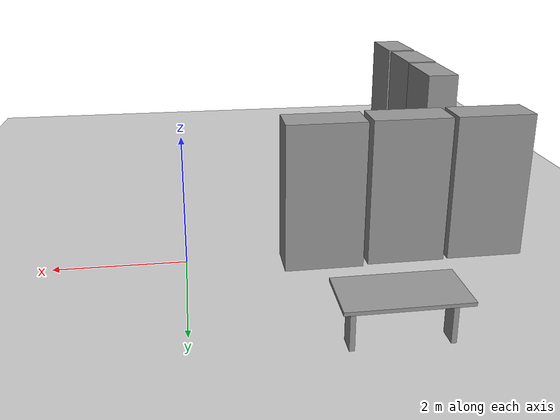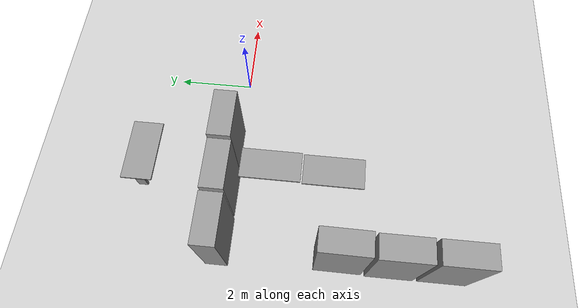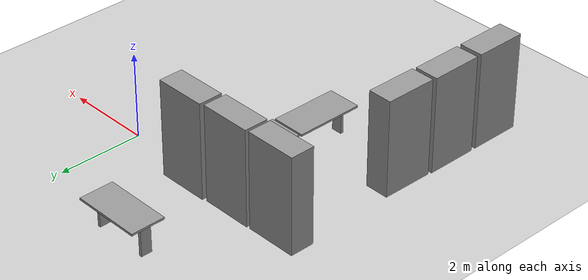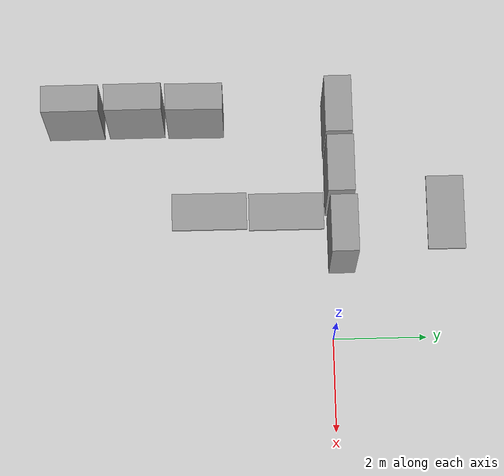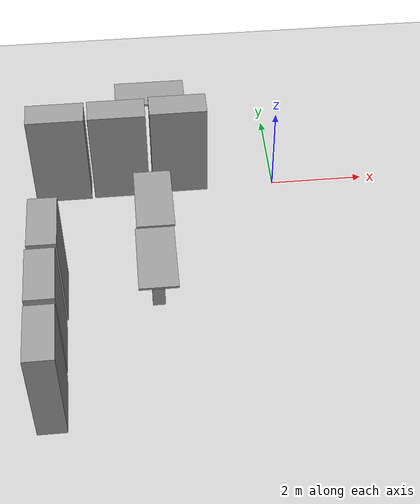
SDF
<sdf version="1.6">
 <world name="default">
  <model name="ground_plane">
   <static>1</static>
   <link name="link">
    <collision name="collision">
     <geometry><plane><normal>0 0 1</normal><size>100 100</size></plane></geometry>
     <surface><friction><ode><mu>100</mu><mu2>50</mu2></ode></friction></surface>
    </collision>
    <visual name="visual">
     <cast_shadows>0</cast_shadows>
     <geometry><plane><normal>0 0 1</normal><size>100 100</size></plane></geometry>
     <material>
      <script><uri>file://media/materials/scripts/gazebo.material</uri><name>Gazebo/Grey</name></script>
     </material>
    </visual>
   </link>
  </model>
  <model name="table2_1_2">
   <link name="link_0">
    <pose>0.065308 0.022644 0.260892 0 -0 0</pose>
    <inertial>
     <mass>0.0176486</mass>
     <inertia>
      <ixx>0.00156504</ixx>
      <ixy>0</ixy>
      <ixz>0</ixz>
      <iyy>0.00147786</iyy>
      <iyz>0</iyz>
      <izz>0.00010146</izz>
     </inertia>
    </inertial>
    <visual name="visual">
     <geometry><box><size>0.0697 0.253231 0.7</size></box></geometry>
     <material>
      <lighting>1</lighting>
      <script><uri>file://media/materials/scripts/gazebo.material</uri><name>Gazebo/Grey</name></script>
      <ambient>0.3 0.3 0.3 1</ambient>
      <diffuse>0.7 0.7 0.7 1</diffuse>
      <specular>0.01 0.01 0.01 1</specular>
      <emissive>0 0 0 1</emissive>
      <shader type="vertex"><normal_map>__default__</normal_map></shader>
     </material>
    </visual>
    <collision name="collision">
     <geometry><box><size>0.0697 0.253231 0.7</size></box></geometry>
     <surface>
      <friction>
       <ode><mu>1</mu><mu2>1</mu2><fdir1>0 0 0</fdir1><slip1>0</slip1><slip2>0</slip2></ode>
       <torsional>
        <coefficient>1</coefficient>
        <patch_radius>0</patch_radius>
        <surface_radius>0</surface_radius>
        <use_patch_radius>1</use_patch_radius>
        <ode><slip>0</slip></ode>
       </torsional>
      </friction>
      <bounce><restitution_coefficient>0</restitution_coefficient><threshold>1e+06</threshold></bounce>
      <contact>
       <collide_without_contact>0</collide_without_contact>
       <collide_without_contact_bitmask>1</collide_without_contact_bitmask>
       <collide_bitmask>1</collide_bitmask>
       <ode>
        <soft_cfm>0</soft_cfm>
        <soft_erp>0.2</soft_erp>
        <kp>1e+13</kp>
        <kd>1</kd>
        <max_vel>0.01</max_vel>
        <min_depth>0</min_depth>
       </ode>
       <bullet>
        <split_impulse>1</split_impulse>
        <split_impulse_penetration_threshold>-0.01</split_impulse_penetration_threshold>
        <soft_cfm>0</soft_cfm>
        <soft_erp>0.2</soft_erp>
        <kp>1e+13</kp>
        <kd>1</kd>
       </bullet>
      </contact>
     </surface>
    </collision>
   </link>
   <link name="link_0_clone">
    <pose>1.3547 0.013267 0.260893 0 -0 0</pose>
    <inertial>
     <mass>0.0176486</mass>
     <inertia>
      <ixx>0.00156504</ixx>
      <ixy>0</ixy>
      <ixz>0</ixz>
      <iyy>0.00147786</iyy>
      <iyz>0</iyz>
      <izz>0.00010146</izz>
     </inertia>
    </inertial>
    <visual name="visual">
     <geometry><box><size>0.0697 0.253231 0.7</size></box></geometry>
     <material>
      <lighting>1</lighting>
      <script><uri>file://media/materials/scripts/gazebo.material</uri><name>Gazebo/Grey</name></script>
      <ambient>0.3 0.3 0.3 1</ambient>
      <diffuse>0.7 0.7 0.7 1</diffuse>
      <specular>0.01 0.01 0.01 1</specular>
      <emissive>0 0 0 1</emissive>
      <shader type="vertex"><normal_map>__default__</normal_map></shader>
     </material>
    </visual>
    <collision name="collision">
     <geometry><box><size>0.0697 0.253231 0.7</size></box></geometry>
     <surface>
      <friction>
       <ode><mu>1</mu><mu2>1</mu2><fdir1>0 0 0</fdir1><slip1>0</slip1><slip2>0</slip2></ode>
       <torsional>
        <coefficient>1</coefficient>
        <patch_radius>0</patch_radius>
        <surface_radius>0</surface_radius>
        <use_patch_radius>1</use_patch_radius>
        <ode><slip>0</slip></ode>
       </torsional>
      </friction>
      <bounce><restitution_coefficient>0</restitution_coefficient><threshold>1e+06</threshold></bounce>
      <contact>
       <collide_without_contact>0</collide_without_contact>
       <collide_without_contact_bitmask>1</collide_without_contact_bitmask>
       <collide_bitmask>1</collide_bitmask>
       <ode>
        <soft_cfm>0</soft_cfm>
        <soft_erp>0.2</soft_erp>
        <kp>1e+13</kp>
        <kd>1</kd>
        <max_vel>0.01</max_vel>
        <min_depth>0</min_depth>
       </ode>
       <bullet>
        <split_impulse>1</split_impulse>
        <split_impulse_penetration_threshold>-0.01</split_impulse_penetration_threshold>
        <soft_cfm>0</soft_cfm>
        <soft_erp>0.2</soft_erp>
        <kp>1e+13</kp>
        <kd>1</kd>
       </bullet>
      </contact>
     </surface>
    </collision>
   </link>
   <link name="link_1">
    <pose>0.742636 0.022644 0.617468 0 -0 0</pose>
    <inertial>
     <mass>0.0666298</mass>
     <inertia>
      <ixx>0.00555983</ixx>
      <ixy>0</ixy>
      <ixz>0</ixz>
      <iyy>0.0186674</iyy>
      <iyz>0</iyz>
      <izz>0.0242125</izz>
     </inertia>
    </inertial>
    <visual name="visual">
     <geometry><box><size>1.6 0.8 0.050001</size></box></geometry>
     <material>
      <lighting>1</lighting>
      <script><uri>file://media/materials/scripts/gazebo.material</uri><name>Gazebo/Grey</name></script>
      <ambient>0.3 0.3 0.3 1</ambient>
      <diffuse>0.7 0.7 0.7 1</diffuse>
      <specular>0.01 0.01 0.01 1</specular>
      <emissive>0 0 0 1</emissive>
      <shader type="vertex"><normal_map>__default__</normal_map></shader>
     </material>
    </visual>
    <collision name="collision">
     <geometry><box><size>1.6 0.8 0.050001</size></box></geometry>
     <surface>
      <friction>
       <ode><mu>1000</mu><mu2>1000</mu2><fdir1>0 0 0</fdir1><slip1>0</slip1><slip2>0</slip2></ode>
       <torsional>
        <coefficient>1</coefficient>
        <patch_radius>0</patch_radius>
        <surface_radius>0</surface_radius>
        <use_patch_radius>1</use_patch_radius>
        <ode><slip>0</slip></ode>
       </torsional>
      </friction>
      <bounce><restitution_coefficient>0</restitution_coefficient><threshold>1e+06</threshold></bounce>
      <contact>
       <collide_without_contact>0</collide_without_contact>
       <collide_without_contact_bitmask>1</collide_without_contact_bitmask>
       <collide_bitmask>1</collide_bitmask>
       <ode>
        <soft_cfm>0</soft_cfm>
        <soft_erp>0.2</soft_erp>
        <kp>1e+13</kp>
        <kd>1</kd>
        <max_vel>0.01</max_vel>
        <min_depth>0</min_depth>
       </ode>
       <bullet>
        <split_impulse>1</split_impulse>
        <split_impulse_penetration_threshold>-0.01</split_impulse_penetration_threshold>
        <soft_cfm>0</soft_cfm>
        <soft_erp>0.2</soft_erp>
        <kp>1e+13</kp>
        <kd>1</kd>
       </bullet>
      </contact>
     </surface>
    </collision>
   </link>
   <joint name="link_0_JOINT_0" type="fixed">
    <parent>link_0</parent>
    <child>link_0_clone</child>
    <physics>
     <ode><limit><cfm>0</cfm><erp>0.2</erp></limit><suspension><cfm>0</cfm><erp>0.2</erp></suspension></ode>
    </physics>
   </joint>
   <joint name="link_1_JOINT_1" type="fixed">
    <parent>link_1</parent>
    <child>link_0</child>
    <physics>
     <ode><limit><cfm>0</cfm><erp>0.2</erp></limit><suspension><cfm>0</cfm><erp>0.2</erp></suspension></ode>
    </physics>
   </joint>
   <static>1</static>
   <pose>-3.32099 2.43146 0.099338 0 -0 0</pose>
  </model>
  <model name="Closet">
   <link name="link_0">
    <inertial>
     <mass>1.28913</mass>
     <inertia>
      <ixx>0.592801</ixx>
      <ixy>0</ixy>
      <ixz>0</ixz>
      <iyy>0.665886</iyy>
      <iyz>0</iyz>
      <izz>0.14177</izz>
     </inertia>
    </inertial>
    <visual name="visual">
     <geometry><box><size>1.2 0.565387 2.28001</size></box></geometry>
     <material>
      <lighting>1</lighting>
      <script><uri>file://media/materials/scripts/gazebo.material</uri><name>Gazebo/Grey</name></script>
      <ambient>0.3 0.3 0.3 1</ambient>
      <diffuse>0.7 0.7 0.7 1</diffuse>
      <specular>0.01 0.01 0.01 1</specular>
      <emissive>0 0 0 1</emissive>
      <shader type="vertex"><normal_map>__default__</normal_map></shader>
     </material>
    </visual>
    <collision name="collision">
     <geometry><box><size>1.2 0.565387 2.28001</size></box></geometry>
     <surface>
      <friction>
       <ode><mu>1</mu><mu2>1</mu2><fdir1>0 0 0</fdir1><slip1>0</slip1><slip2>0</slip2></ode>
       <torsional>
        <coefficient>1</coefficient>
        <patch_radius>0</patch_radius>
        <surface_radius>0</surface_radius>
        <use_patch_radius>1</use_patch_radius>
        <ode><slip>0</slip></ode>
       </torsional>
      </friction>
      <bounce><restitution_coefficient>0</restitution_coefficient><threshold>1e+06</threshold></bounce>
      <contact>
       <collide_without_contact>0</collide_without_contact>
       <collide_without_contact_bitmask>1</collide_without_contact_bitmask>
       <collide_bitmask>1</collide_bitmask>
       <ode>
        <soft_cfm>0</soft_cfm>
        <soft_erp>0.2</soft_erp>
        <kp>1e+13</kp>
        <kd>1</kd>
        <max_vel>0.01</max_vel>
        <min_depth>0</min_depth>
       </ode>
       <bullet>
        <split_impulse>1</split_impulse>
        <split_impulse_penetration_threshold>-0.01</split_impulse_penetration_threshold>
        <soft_cfm>0</soft_cfm>
        <soft_erp>0.2</soft_erp>
        <kp>1e+13</kp>
        <kd>1</kd>
       </bullet>
      </contact>
     </surface>
    </collision>
   </link>
   <static>0</static>
   <pose>-4.60391 0.162888 1.14001 0 1e-06 0.001911</pose>
  </model>
  <model name="Closet_clone">
   <link name="link_0">
    <inertial>
     <mass>1.28913</mass>
     <inertia>
      <ixx>0.592801</ixx>
      <ixy>0</ixy>
      <ixz>0</ixz>
      <iyy>0.665886</iyy>
      <iyz>0</iyz>
      <izz>0.14177</izz>
     </inertia>
    </inertial>
    <visual name="visual">
     <geometry><box><size>1.2 0.565387 2.28001</size></box></geometry>
     <material>
      <lighting>1</lighting>
      <script><uri>file://media/materials/scripts/gazebo.material</uri><name>Gazebo/Grey</name></script>
      <ambient>0.3 0.3 0.3 1</ambient>
      <diffuse>0.7 0.7 0.7 1</diffuse>
      <specular>0.01 0.01 0.01 1</specular>
      <emissive>0 0 0 1</emissive>
      <shader type="vertex"><normal_map>__default__</normal_map></shader>
     </material>
    </visual>
    <collision name="collision">
     <geometry><box><size>1.2 0.565387 2.28001</size></box></geometry>
     <surface>
      <friction>
       <ode><mu>1</mu><mu2>1</mu2><fdir1>0 0 0</fdir1><slip1>0</slip1><slip2>0</slip2></ode>
       <torsional>
        <coefficient>1</coefficient>
        <patch_radius>0</patch_radius>
        <surface_radius>0</surface_radius>
        <use_patch_radius>1</use_patch_radius>
        <ode><slip>0</slip></ode>
       </torsional>
      </friction>
      <bounce><restitution_coefficient>0</restitution_coefficient><threshold>1e+06</threshold></bounce>
      <contact>
       <collide_without_contact>0</collide_without_contact>
       <collide_without_contact_bitmask>1</collide_without_contact_bitmask>
       <collide_bitmask>1</collide_bitmask>
       <ode>
        <soft_cfm>0</soft_cfm>
        <soft_erp>0.2</soft_erp>
        <kp>1e+13</kp>
        <kd>1</kd>
        <max_vel>0.01</max_vel>
        <min_depth>0</min_depth>
       </ode>
       <bullet>
        <split_impulse>1</split_impulse>
        <split_impulse_penetration_threshold>-0.01</split_impulse_penetration_threshold>
        <soft_cfm>0</soft_cfm>
        <soft_erp>0.2</soft_erp>
        <kp>1e+13</kp>
        <kd>1</kd>
       </bullet>
      </contact>
     </surface>
    </collision>
   </link>
   <static>0</static>
   <pose>-3.33389 0.179448 1.14 1e-06 -2e-06 -0.000639</pose>
  </model>
  <model name="Closet_clone_0">
   <link name="link_0">
    <inertial>
     <mass>1.28913</mass>
     <inertia>
      <ixx>0.592801</ixx>
      <ixy>0</ixy>
      <ixz>0</ixz>
      <iyy>0.665886</iyy>
      <iyz>0</iyz>
      <izz>0.14177</izz>
     </inertia>
    </inertial>
    <visual name="visual">
     <geometry><box><size>1.2 0.565387 2.28001</size></box></geometry>
     <material>
      <lighting>1</lighting>
      <script><uri>file://media/materials/scripts/gazebo.material</uri><name>Gazebo/Grey</name></script>
      <ambient>0.3 0.3 0.3 1</ambient>
      <diffuse>0.7 0.7 0.7 1</diffuse>
      <specular>0.01 0.01 0.01 1</specular>
      <emissive>0 0 0 1</emissive>
      <shader type="vertex"><normal_map>__default__</normal_map></shader>
     </material>
    </visual>
    <collision name="collision">
     <geometry><box><size>1.2 0.565387 2.28001</size></box></geometry>
     <surface>
      <friction>
       <ode><mu>1</mu><mu2>1</mu2><fdir1>0 0 0</fdir1><slip1>0</slip1><slip2>0</slip2></ode>
       <torsional>
        <coefficient>1</coefficient>
        <patch_radius>0</patch_radius>
        <surface_radius>0</surface_radius>
        <use_patch_radius>1</use_patch_radius>
        <ode><slip>0</slip></ode>
       </torsional>
      </friction>
      <bounce><restitution_coefficient>0</restitution_coefficient><threshold>1e+06</threshold></bounce>
      <contact>
       <collide_without_contact>0</collide_without_contact>
       <collide_without_contact_bitmask>1</collide_without_contact_bitmask>
       <collide_bitmask>1</collide_bitmask>
       <ode>
        <soft_cfm>0</soft_cfm>
        <soft_erp>0.2</soft_erp>
        <kp>1e+13</kp>
        <kd>1</kd>
        <max_vel>0.01</max_vel>
        <min_depth>0</min_depth>
       </ode>
       <bullet>
        <split_impulse>1</split_impulse>
        <split_impulse_penetration_threshold>-0.01</split_impulse_penetration_threshold>
        <soft_cfm>0</soft_cfm>
        <soft_erp>0.2</soft_erp>
        <kp>1e+13</kp>
        <kd>1</kd>
       </bullet>
      </contact>
     </surface>
    </collision>
   </link>
   <static>0</static>
   <pose>-2.05089 0.22214 1.14 1e-06 2e-06 0.003028</pose>
  </model>
  <model name="Closet_clone_0_clone">
   <link name="link_0">
    <inertial>
     <mass>1.28913</mass>
     <inertia>
      <ixx>0.592801</ixx>
      <ixy>0</ixy>
      <ixz>0</ixz>
      <iyy>0.665886</iyy>
      <iyz>0</iyz>
      <izz>0.14177</izz>
     </inertia>
    </inertial>
    <visual name="visual">
     <geometry><box><size>1.2 0.565387 2.28001</size></box></geometry>
     <material>
      <lighting>1</lighting>
      <script><uri>file://media/materials/scripts/gazebo.material</uri><name>Gazebo/Grey</name></script>
      <ambient>0.3 0.3 0.3 1</ambient>
      <diffuse>0.7 0.7 0.7 1</diffuse>
      <specular>0.01 0.01 0.01 1</specular>
      <emissive>0 0 0 1</emissive>
      <shader type="vertex"><normal_map>__default__</normal_map></shader>
     </material>
    </visual>
    <collision name="collision">
     <geometry><box><size>1.2 0.565387 2.28001</size></box></geometry>
     <surface>
      <friction>
       <ode><mu>1</mu><mu2>1</mu2><fdir1>0 0 0</fdir1><slip1>0</slip1><slip2>0</slip2></ode>
       <torsional>
        <coefficient>1</coefficient>
        <patch_radius>0</patch_radius>
        <surface_radius>0</surface_radius>
        <use_patch_radius>1</use_patch_radius>
        <ode><slip>0</slip></ode>
       </torsional>
      </friction>
      <bounce><restitution_coefficient>0</restitution_coefficient><threshold>1e+06</threshold></bounce>
      <contact>
       <collide_without_contact>0</collide_without_contact>
       <collide_without_contact_bitmask>1</collide_without_contact_bitmask>
       <collide_bitmask>1</collide_bitmask>
       <ode>
        <soft_cfm>0</soft_cfm>
        <soft_erp>0.2</soft_erp>
        <kp>1e+13</kp>
        <kd>1</kd>
        <max_vel>0.01</max_vel>
        <min_depth>0</min_depth>
       </ode>
       <bullet>
        <split_impulse>1</split_impulse>
        <split_impulse_penetration_threshold>-0.01</split_impulse_penetration_threshold>
        <soft_cfm>0</soft_cfm>
        <soft_erp>0.2</soft_erp>
        <kp>1e+13</kp>
        <kd>1</kd>
       </bullet>
      </contact>
     </surface>
    </collision>
   </link>
   <static>0</static>
   <pose>-4.83721 -5.44636 1.14001 0 1e-06 -1.56738</pose>
  </model>
  <model name="Closet_clone_0_clone_clone">
   <link name="link_0">
    <inertial>
     <mass>1.28913</mass>
     <inertia>
      <ixx>0.592801</ixx>
      <ixy>0</ixy>
      <ixz>0</ixz>
      <iyy>0.665886</iyy>
      <iyz>0</iyz>
      <izz>0.14177</izz>
     </inertia>
    </inertial>
    <visual name="visual">
     <geometry><box><size>1.2 0.565387 2.28001</size></box></geometry>
     <material>
      <lighting>1</lighting>
      <script><uri>file://media/materials/scripts/gazebo.material</uri><name>Gazebo/Grey</name></script>
      <ambient>0.3 0.3 0.3 1</ambient>
      <diffuse>0.7 0.7 0.7 1</diffuse>
      <specular>0.01 0.01 0.01 1</specular>
      <emissive>0 0 0 1</emissive>
      <shader type="vertex"><normal_map>__default__</normal_map></shader>
     </material>
    </visual>
    <collision name="collision">
     <geometry><box><size>1.2 0.565387 2.28001</size></box></geometry>
     <surface>
      <friction>
       <ode><mu>1</mu><mu2>1</mu2><fdir1>0 0 0</fdir1><slip1>0</slip1><slip2>0</slip2></ode>
       <torsional>
        <coefficient>1</coefficient>
        <patch_radius>0</patch_radius>
        <surface_radius>0</surface_radius>
        <use_patch_radius>1</use_patch_radius>
        <ode><slip>0</slip></ode>
       </torsional>
      </friction>
      <bounce><restitution_coefficient>0</restitution_coefficient><threshold>1e+06</threshold></bounce>
      <contact>
       <collide_without_contact>0</collide_without_contact>
       <collide_without_contact_bitmask>1</collide_without_contact_bitmask>
       <collide_bitmask>1</collide_bitmask>
       <ode>
        <soft_cfm>0</soft_cfm>
        <soft_erp>0.2</soft_erp>
        <kp>1e+13</kp>
        <kd>1</kd>
        <max_vel>0.01</max_vel>
        <min_depth>0</min_depth>
       </ode>
       <bullet>
        <split_impulse>1</split_impulse>
        <split_impulse_penetration_threshold>-0.01</split_impulse_penetration_threshold>
        <soft_cfm>0</soft_cfm>
        <soft_erp>0.2</soft_erp>
        <kp>1e+13</kp>
        <kd>1</kd>
       </bullet>
      </contact>
     </surface>
    </collision>
   </link>
   <static>0</static>
   <pose>-4.84303 -4.13441 1.14 -1e-06 2e-06 -1.56672</pose>
  </model>
  <model name="Closet_clone_0_clone_clone_clone">
   <link name="link_0">
    <inertial>
     <mass>1.28913</mass>
     <inertia>
      <ixx>0.592801</ixx>
      <ixy>0</ixy>
      <ixz>0</ixz>
      <iyy>0.665886</iyy>
      <iyz>0</iyz>
      <izz>0.14177</izz>
     </inertia>
    </inertial>
    <visual name="visual">
     <geometry><box><size>1.2 0.565387 2.28001</size></box></geometry>
     <material>
      <lighting>1</lighting>
      <script><uri>file://media/materials/scripts/gazebo.material</uri><name>Gazebo/Grey</name></script>
      <ambient>0.3 0.3 0.3 1</ambient>
      <diffuse>0.7 0.7 0.7 1</diffuse>
      <specular>0.01 0.01 0.01 1</specular>
      <emissive>0 0 0 1</emissive>
      <shader type="vertex"><normal_map>__default__</normal_map></shader>
     </material>
    </visual>
    <collision name="collision">
     <geometry><box><size>1.2 0.565387 2.28001</size></box></geometry>
     <surface>
      <friction>
       <ode><mu>1</mu><mu2>1</mu2><fdir1>0 0 0</fdir1><slip1>0</slip1><slip2>0</slip2></ode>
       <torsional>
        <coefficient>1</coefficient>
        <patch_radius>0</patch_radius>
        <surface_radius>0</surface_radius>
        <use_patch_radius>1</use_patch_radius>
        <ode><slip>0</slip></ode>
       </torsional>
      </friction>
      <bounce><restitution_coefficient>0</restitution_coefficient><threshold>1e+06</threshold></bounce>
      <contact>
       <collide_without_contact>0</collide_without_contact>
       <collide_without_contact_bitmask>1</collide_without_contact_bitmask>
       <collide_bitmask>1</collide_bitmask>
       <ode>
        <soft_cfm>0</soft_cfm>
        <soft_erp>0.2</soft_erp>
        <kp>1e+13</kp>
        <kd>1</kd>
        <max_vel>0.01</max_vel>
        <min_depth>0</min_depth>
       </ode>
       <bullet>
        <split_impulse>1</split_impulse>
        <split_impulse_penetration_threshold>-0.01</split_impulse_penetration_threshold>
        <soft_cfm>0</soft_cfm>
        <soft_erp>0.2</soft_erp>
        <kp>1e+13</kp>
        <kd>1</kd>
       </bullet>
      </contact>
     </surface>
    </collision>
   </link>
   <static>0</static>
   <pose>-4.8171 -2.8545 1.14 1e-06 -2e-06 -1.57671</pose>
  </model>
  <model name="table2_1_2_clone_0_clone_0_clone_0_clone_1">
   <link name="link_0">
    <pose>0.065308 0.022644 0.260892 0 -0 0</pose>
    <inertial>
     <mass>0.0176486</mass>
     <inertia>
      <ixx>0.00156504</ixx>
      <ixy>0</ixy>
      <ixz>0</ixz>
      <iyy>0.00147786</iyy>
      <iyz>0</iyz>
      <izz>0.00010146</izz>
     </inertia>
    </inertial>
    <visual name="visual">
     <geometry><box><size>0.0697 0.253231 0.7</size></box></geometry>
     <material>
      <lighting>1</lighting>
      <script><uri>file://media/materials/scripts/gazebo.material</uri><name>Gazebo/Grey</name></script>
      <ambient>0.3 0.3 0.3 1</ambient>
      <diffuse>0.7 0.7 0.7 1</diffuse>
      <specular>0.01 0.01 0.01 1</specular>
      <emissive>0 0 0 1</emissive>
      <shader type="vertex"><normal_map>__default__</normal_map></shader>
     </material>
    </visual>
    <collision name="collision">
     <geometry><box><size>0.0697 0.253231 0.7</size></box></geometry>
     <surface>
      <friction>
       <ode><mu>1</mu><mu2>1</mu2><fdir1>0 0 0</fdir1><slip1>0</slip1><slip2>0</slip2></ode>
       <torsional>
        <coefficient>1</coefficient>
        <patch_radius>0</patch_radius>
        <surface_radius>0</surface_radius>
        <use_patch_radius>1</use_patch_radius>
        <ode><slip>0</slip></ode>
       </torsional>
      </friction>
      <bounce><restitution_coefficient>0</restitution_coefficient><threshold>1e+06</threshold></bounce>
      <contact>
       <collide_without_contact>0</collide_without_contact>
       <collide_without_contact_bitmask>1</collide_without_contact_bitmask>
       <collide_bitmask>1</collide_bitmask>
       <ode>
        <soft_cfm>0</soft_cfm>
        <soft_erp>0.2</soft_erp>
        <kp>1e+13</kp>
        <kd>1</kd>
        <max_vel>0.01</max_vel>
        <min_depth>0</min_depth>
       </ode>
       <bullet>
        <split_impulse>1</split_impulse>
        <split_impulse_penetration_threshold>-0.01</split_impulse_penetration_threshold>
        <soft_cfm>0</soft_cfm>
        <soft_erp>0.2</soft_erp>
        <kp>1e+13</kp>
        <kd>1</kd>
       </bullet>
      </contact>
     </surface>
    </collision>
   </link>
   <link name="link_0_clone">
    <pose>1.3547 0.013267 0.260893 0 -0 0</pose>
    <inertial>
     <mass>0.0176486</mass>
     <inertia>
      <ixx>0.00156504</ixx>
      <ixy>0</ixy>
      <ixz>0</ixz>
      <iyy>0.00147786</iyy>
      <iyz>0</iyz>
      <izz>0.00010146</izz>
     </inertia>
    </inertial>
    <visual name="visual">
     <geometry><box><size>0.0697 0.253231 0.7</size></box></geometry>
     <material>
      <lighting>1</lighting>
      <script><uri>file://media/materials/scripts/gazebo.material</uri><name>Gazebo/Grey</name></script>
      <ambient>0.3 0.3 0.3 1</ambient>
      <diffuse>0.7 0.7 0.7 1</diffuse>
      <specular>0.01 0.01 0.01 1</specular>
      <emissive>0 0 0 1</emissive>
      <shader type="vertex"><normal_map>__default__</normal_map></shader>
     </material>
    </visual>
    <collision name="collision">
     <geometry><box><size>0.0697 0.253231 0.7</size></box></geometry>
     <surface>
      <friction>
       <ode><mu>1</mu><mu2>1</mu2><fdir1>0 0 0</fdir1><slip1>0</slip1><slip2>0</slip2></ode>
       <torsional>
        <coefficient>1</coefficient>
        <patch_radius>0</patch_radius>
        <surface_radius>0</surface_radius>
        <use_patch_radius>1</use_patch_radius>
        <ode><slip>0</slip></ode>
       </torsional>
      </friction>
      <bounce><restitution_coefficient>0</restitution_coefficient><threshold>1e+06</threshold></bounce>
      <contact>
       <collide_without_contact>0</collide_without_contact>
       <collide_without_contact_bitmask>1</collide_without_contact_bitmask>
       <collide_bitmask>1</collide_bitmask>
       <ode>
        <soft_cfm>0</soft_cfm>
        <soft_erp>0.2</soft_erp>
        <kp>1e+13</kp>
        <kd>1</kd>
        <max_vel>0.01</max_vel>
        <min_depth>0</min_depth>
       </ode>
       <bullet>
        <split_impulse>1</split_impulse>
        <split_impulse_penetration_threshold>-0.01</split_impulse_penetration_threshold>
        <soft_cfm>0</soft_cfm>
        <soft_erp>0.2</soft_erp>
        <kp>1e+13</kp>
        <kd>1</kd>
       </bullet>
      </contact>
     </surface>
    </collision>
   </link>
   <link name="link_1">
    <pose>0.742636 0.022644 0.617468 0 -0 0</pose>
    <inertial>
     <mass>0.0666298</mass>
     <inertia>
      <ixx>0.00555983</ixx>
      <ixy>0</ixy>
      <ixz>0</ixz>
      <iyy>0.0186674</iyy>
      <iyz>0</iyz>
      <izz>0.0242125</izz>
     </inertia>
    </inertial>
    <visual name="visual">
     <geometry><box><size>1.6 0.8 0.050001</size></box></geometry>
     <material>
      <lighting>1</lighting>
      <script><uri>file://media/materials/scripts/gazebo.material</uri><name>Gazebo/Grey</name></script>
      <ambient>0.3 0.3 0.3 1</ambient>
      <diffuse>0.7 0.7 0.7 1</diffuse>
      <specular>0.01 0.01 0.01 1</specular>
      <emissive>0 0 0 1</emissive>
      <shader type="vertex"><normal_map>__default__</normal_map></shader>
     </material>
    </visual>
    <collision name="collision">
     <geometry><box><size>1.6 0.8 0.050001</size></box></geometry>
     <surface>
      <friction>
       <ode><mu>1000</mu><mu2>1000</mu2><fdir1>0 0 0</fdir1><slip1>0</slip1><slip2>0</slip2></ode>
       <torsional>
        <coefficient>1</coefficient>
        <patch_radius>0</patch_radius>
        <surface_radius>0</surface_radius>
        <use_patch_radius>1</use_patch_radius>
        <ode><slip>0</slip></ode>
       </torsional>
      </friction>
      <bounce><restitution_coefficient>0</restitution_coefficient><threshold>1e+06</threshold></bounce>
      <contact>
       <collide_without_contact>0</collide_without_contact>
       <collide_without_contact_bitmask>1</collide_without_contact_bitmask>
       <collide_bitmask>1</collide_bitmask>
       <ode>
        <soft_cfm>0</soft_cfm>
        <soft_erp>0.2</soft_erp>
        <kp>1e+13</kp>
        <kd>1</kd>
        <max_vel>0.01</max_vel>
        <min_depth>0</min_depth>
       </ode>
       <bullet>
        <split_impulse>1</split_impulse>
        <split_impulse_penetration_threshold>-0.01</split_impulse_penetration_threshold>
        <soft_cfm>0</soft_cfm>
        <soft_erp>0.2</soft_erp>
        <kp>1e+13</kp>
        <kd>1</kd>
       </bullet>
      </contact>
     </surface>
    </collision>
   </link>
   <joint name="link_0_JOINT_0" type="fixed">
    <parent>link_0</parent>
    <child>link_0_clone</child>
    <physics>
     <ode><limit><cfm>0</cfm><erp>0.2</erp></limit><suspension><cfm>0</cfm><erp>0.2</erp></suspension></ode>
    </physics>
   </joint>
   <joint name="link_1_JOINT_1" type="fixed">
    <parent>link_1</parent>
    <child>link_0</child>
    <physics>
     <ode><limit><cfm>0</cfm><erp>0.2</erp></limit><suspension><cfm>0</cfm><erp>0.2</erp></suspension></ode>
    </physics>
   </joint>
   <static>1</static>
   <pose>-2.69141 -0.209288 0.099338 0 0 -1.57221</pose>
  </model>
  <model name="table2_1_2_clone_0_clone_0_clone_0_clone_0_clone_0">
   <link name="link_0">
    <pose>0.065308 0.022644 0.260892 0 -0 0</pose>
    <inertial>
     <mass>0.0176486</mass>
     <inertia>
      <ixx>0.00156504</ixx>
      <ixy>0</ixy>
      <ixz>0</ixz>
      <iyy>0.00147786</iyy>
      <iyz>0</iyz>
      <izz>0.00010146</izz>
     </inertia>
    </inertial>
    <visual name="visual">
     <geometry><box><size>0.0697 0.253231 0.7</size></box></geometry>
     <material>
      <lighting>1</lighting>
      <script><uri>file://media/materials/scripts/gazebo.material</uri><name>Gazebo/Grey</name></script>
      <ambient>0.3 0.3 0.3 1</ambient>
      <diffuse>0.7 0.7 0.7 1</diffuse>
      <specular>0.01 0.01 0.01 1</specular>
      <emissive>0 0 0 1</emissive>
      <shader type="vertex"><normal_map>__default__</normal_map></shader>
     </material>
    </visual>
    <collision name="collision">
     <geometry><box><size>0.0697 0.253231 0.7</size></box></geometry>
     <surface>
      <friction>
       <ode><mu>1</mu><mu2>1</mu2><fdir1>0 0 0</fdir1><slip1>0</slip1><slip2>0</slip2></ode>
       <torsional>
        <coefficient>1</coefficient>
        <patch_radius>0</patch_radius>
        <surface_radius>0</surface_radius>
        <use_patch_radius>1</use_patch_radius>
        <ode><slip>0</slip></ode>
       </torsional>
      </friction>
      <bounce><restitution_coefficient>0</restitution_coefficient><threshold>1e+06</threshold></bounce>
      <contact>
       <collide_without_contact>0</collide_without_contact>
       <collide_without_contact_bitmask>1</collide_without_contact_bitmask>
       <collide_bitmask>1</collide_bitmask>
       <ode>
        <soft_cfm>0</soft_cfm>
        <soft_erp>0.2</soft_erp>
        <kp>1e+13</kp>
        <kd>1</kd>
        <max_vel>0.01</max_vel>
        <min_depth>0</min_depth>
       </ode>
       <bullet>
        <split_impulse>1</split_impulse>
        <split_impulse_penetration_threshold>-0.01</split_impulse_penetration_threshold>
        <soft_cfm>0</soft_cfm>
        <soft_erp>0.2</soft_erp>
        <kp>1e+13</kp>
        <kd>1</kd>
       </bullet>
      </contact>
     </surface>
    </collision>
   </link>
   <link name="link_0_clone">
    <pose>1.3547 0.013267 0.260893 0 -0 0</pose>
    <inertial>
     <mass>0.0176486</mass>
     <inertia>
      <ixx>0.00156504</ixx>
      <ixy>0</ixy>
      <ixz>0</ixz>
      <iyy>0.00147786</iyy>
      <iyz>0</iyz>
      <izz>0.00010146</izz>
     </inertia>
    </inertial>
    <visual name="visual">
     <geometry><box><size>0.0697 0.253231 0.7</size></box></geometry>
     <material>
      <lighting>1</lighting>
      <script><uri>file://media/materials/scripts/gazebo.material</uri><name>Gazebo/Grey</name></script>
      <ambient>0.3 0.3 0.3 1</ambient>
      <diffuse>0.7 0.7 0.7 1</diffuse>
      <specular>0.01 0.01 0.01 1</specular>
      <emissive>0 0 0 1</emissive>
      <shader type="vertex"><normal_map>__default__</normal_map></shader>
     </material>
    </visual>
    <collision name="collision">
     <geometry><box><size>0.0697 0.253231 0.7</size></box></geometry>
     <surface>
      <friction>
       <ode><mu>1</mu><mu2>1</mu2><fdir1>0 0 0</fdir1><slip1>0</slip1><slip2>0</slip2></ode>
       <torsional>
        <coefficient>1</coefficient>
        <patch_radius>0</patch_radius>
        <surface_radius>0</surface_radius>
        <use_patch_radius>1</use_patch_radius>
        <ode><slip>0</slip></ode>
       </torsional>
      </friction>
      <bounce><restitution_coefficient>0</restitution_coefficient><threshold>1e+06</threshold></bounce>
      <contact>
       <collide_without_contact>0</collide_without_contact>
       <collide_without_contact_bitmask>1</collide_without_contact_bitmask>
       <collide_bitmask>1</collide_bitmask>
       <ode>
        <soft_cfm>0</soft_cfm>
        <soft_erp>0.2</soft_erp>
        <kp>1e+13</kp>
        <kd>1</kd>
        <max_vel>0.01</max_vel>
        <min_depth>0</min_depth>
       </ode>
       <bullet>
        <split_impulse>1</split_impulse>
        <split_impulse_penetration_threshold>-0.01</split_impulse_penetration_threshold>
        <soft_cfm>0</soft_cfm>
        <soft_erp>0.2</soft_erp>
        <kp>1e+13</kp>
        <kd>1</kd>
       </bullet>
      </contact>
     </surface>
    </collision>
   </link>
   <link name="link_1">
    <pose>0.742636 0.022644 0.617468 0 -0 0</pose>
    <inertial>
     <mass>0.0666298</mass>
     <inertia>
      <ixx>0.00555983</ixx>
      <ixy>0</ixy>
      <ixz>0</ixz>
      <iyy>0.0186674</iyy>
      <iyz>0</iyz>
      <izz>0.0242125</izz>
     </inertia>
    </inertial>
    <visual name="visual">
     <geometry><box><size>1.6 0.8 0.050001</size></box></geometry>
     <material>
      <lighting>1</lighting>
      <script><uri>file://media/materials/scripts/gazebo.material</uri><name>Gazebo/Grey</name></script>
      <ambient>0.3 0.3 0.3 1</ambient>
      <diffuse>0.7 0.7 0.7 1</diffuse>
      <specular>0.01 0.01 0.01 1</specular>
      <emissive>0 0 0 1</emissive>
      <shader type="vertex"><normal_map>__default__</normal_map></shader>
     </material>
    </visual>
    <collision name="collision">
     <geometry><box><size>1.6 0.8 0.050001</size></box></geometry>
     <surface>
      <friction>
       <ode><mu>1000</mu><mu2>1000</mu2><fdir1>0 0 0</fdir1><slip1>0</slip1><slip2>0</slip2></ode>
       <torsional>
        <coefficient>1</coefficient>
        <patch_radius>0</patch_radius>
        <surface_radius>0</surface_radius>
        <use_patch_radius>1</use_patch_radius>
        <ode><slip>0</slip></ode>
       </torsional>
      </friction>
      <bounce><restitution_coefficient>0</restitution_coefficient><threshold>1e+06</threshold></bounce>
      <contact>
       <collide_without_contact>0</collide_without_contact>
       <collide_without_contact_bitmask>1</collide_without_contact_bitmask>
       <collide_bitmask>1</collide_bitmask>
       <ode>
        <soft_cfm>0</soft_cfm>
        <soft_erp>0.2</soft_erp>
        <kp>1e+13</kp>
        <kd>1</kd>
        <max_vel>0.01</max_vel>
        <min_depth>0</min_depth>
       </ode>
       <bullet>
        <split_impulse>1</split_impulse>
        <split_impulse_penetration_threshold>-0.01</split_impulse_penetration_threshold>
        <soft_cfm>0</soft_cfm>
        <soft_erp>0.2</soft_erp>
        <kp>1e+13</kp>
        <kd>1</kd>
       </bullet>
      </contact>
     </surface>
    </collision>
   </link>
   <joint name="link_0_JOINT_0" type="fixed">
    <parent>link_0</parent>
    <child>link_0_clone</child>
    <physics>
     <ode><limit><cfm>0</cfm><erp>0.2</erp></limit><suspension><cfm>0</cfm><erp>0.2</erp></suspension></ode>
    </physics>
   </joint>
   <joint name="link_1_JOINT_1" type="fixed">
    <parent>link_1</parent>
    <child>link_0</child>
    <physics>
     <ode><limit><cfm>0</cfm><erp>0.2</erp></limit><suspension><cfm>0</cfm><erp>0.2</erp></suspension></ode>
    </physics>
   </joint>
   <static>1</static>
   <pose>-2.72431 -1.85207 0.099338 0 0 -1.57221</pose>
  </model>
 </world>
</sdf>
